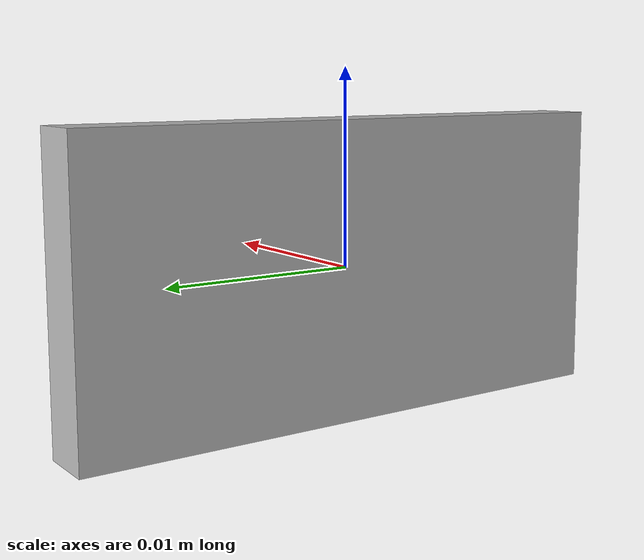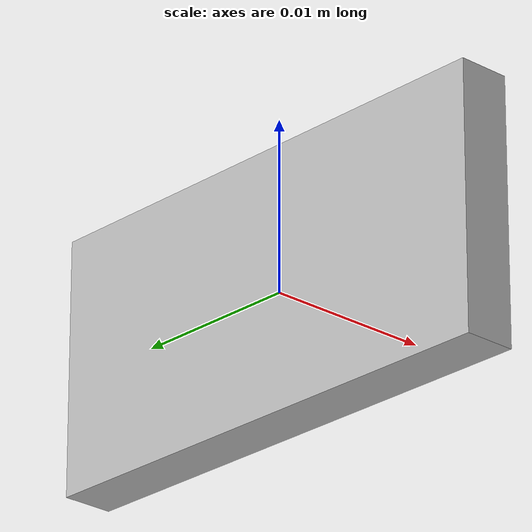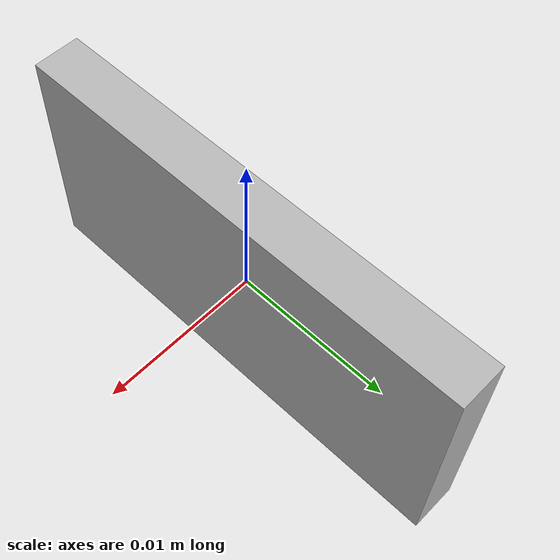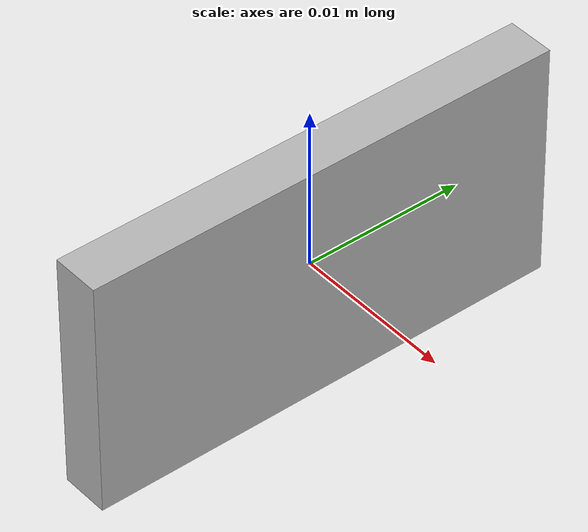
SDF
<?xml version="1.0" ?>
<sdf version="1.4">
  <model name="rm_ultrasonic_sensor_1">
    <link name="link">
      <collision name='ultrasonic_sensor_1_collision'>
        <pose>0 0 0 0 0 0</pose>
        <geometry>
          <box>
            <size>0.003 0.03 0.015</size>
          </box>
        </geometry>
      </collision>

      <visual name='ultrasonic_sensor_1_visual'>
        <pose>0 0 0 0 0 0</pose>
        <geometry>
          <box>
            <size>0.003 0.03 0.015</size>
          </box>
        </geometry>
      </visual>

      <sensor type="ray" name="ultrasonic_sensor_1">
        <pose>0 0 0 0 0 0</pose>
        <visualize>true</visualize>
        <update_rate>50</update_rate>
        <ray>
           <scan>
              <horizontal>
                 <samples>10</samples>
                 <resolution>1</resolution>
                 <min_angle>-0.08726</min_angle>
                 <max_angle>0.08726</max_angle>
              </horizontal>
              <vertical>
                 <samples>10</samples>
                 <resolution>1</resolution>
                 <min_angle>-0.08726</min_angle>
                 <max_angle>0.08726</max_angle>
              </vertical>
           </scan>
           <range>
              <min>0.02</min>
              <max>4</max>
              <resolution>0.02</resolution>
           </range>
        </ray>
        <plugin filename="libgazebo_ros_range.so" name="gazebo_ros_range">
           <gaussianNoise>0.005</gaussianNoise>
           <alwaysOn>true</alwaysOn>
           <updateRate>50</updateRate>
           <topicName>ultrasonic_sensor_1/reading</topicName>
           <frameName>ultrasonic_sensor_1_link</frameName>
           <radiation>ultrasonic</radiation>
           <fov>0.17452</fov>
        </plugin>
      </sensor>

    </link>
  </model>
</sdf>
